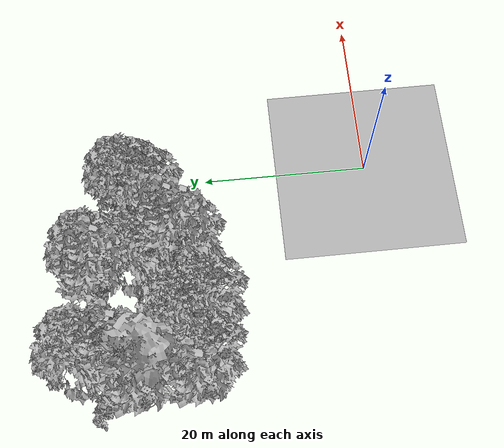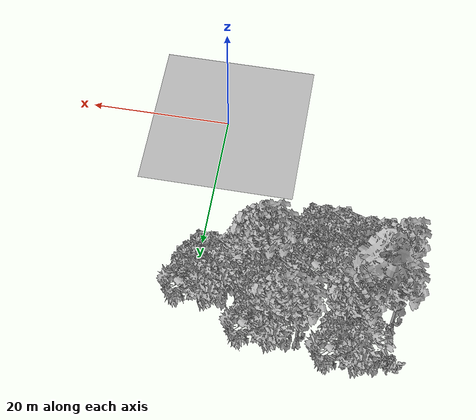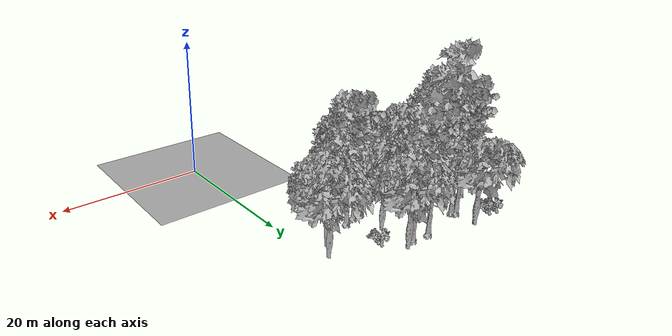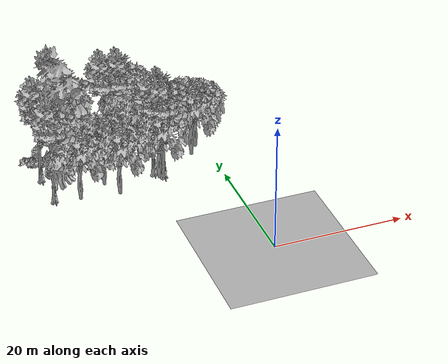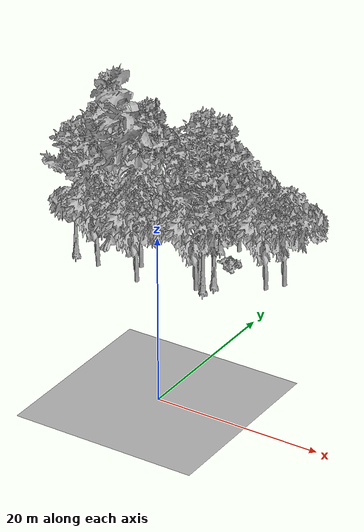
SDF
<sdf version="1.7">
 <world name="default">
  <model name="ground_plane">
   <static>1</static>
   <link name="link">
    <collision name="collision">
     <geometry><plane><normal>0 0 1</normal><size>100 100</size></plane></geometry>
     <surface><contact><ode><min_depth>0.01</min_depth><max_vel>0</max_vel></ode></contact></surface>
    </collision>
    <visual name="grass">
     <cast_shadows>0</cast_shadows>
     <geometry>
      <mesh>
       <scale>0.41000000000000003 0.41000000000000003 0.1</scale>
       <uri>file://grass_plane/meshes/grass_plane.dae</uri>
      </mesh>
     </geometry>
    </visual>
   </link>
  </model>
  <model name="Tree 53">
   <static>1</static>
   <pose>-23.803758097763165 27.53242939550931 0 1.57079 -0 0</pose>
   <link name="link">
    <collision name="collision">
     <geometry><mesh><scale>5 5 5</scale><uri>model://tree_4/meshes/tree_4.obj</uri></mesh></geometry>
    </collision>
    <visual name="visual">
     <geometry><mesh><scale>5 5 5</scale><uri>model://tree_4/meshes/tree_4.obj</uri></mesh></geometry>
    </visual>
   </link>
  </model>
  <model name="Tree 92">
   <static>1</static>
   <pose>-14.807454981048025 32.73547530737093 0 1.57079 -0 0</pose>
   <link name="link">
    <collision name="collision">
     <geometry><mesh><scale>5 5 5</scale><uri>model://tree_9/meshes/tree_9.obj</uri></mesh></geometry>
    </collision>
    <visual name="visual">
     <geometry><mesh><scale>5 5 5</scale><uri>model://tree_9/meshes/tree_9.obj</uri></mesh></geometry>
    </visual>
   </link>
  </model>
  <model name="Tree 132">
   <static>1</static>
   <pose>-8.780857883740538 22.985955963311554 0 1.57079 -0 0</pose>
   <link name="link">
    <collision name="collision">
     <geometry><mesh><scale>5 5 5</scale><uri>model://tree_9/meshes/tree_9.obj</uri></mesh></geometry>
    </collision>
    <visual name="visual">
     <geometry><mesh><scale>5 5 5</scale><uri>model://tree_9/meshes/tree_9.obj</uri></mesh></geometry>
    </visual>
   </link>
  </model>
  <model name="Tree 143">
   <static>1</static>
   <pose>-10.896337183410012 28.54299655543771 0 1.57079 -0 0</pose>
   <link name="link">
    <collision name="collision">
     <geometry><mesh><scale>5 5 5</scale><uri>model://tree_2/meshes/tree_2.obj</uri></mesh></geometry>
    </collision>
    <visual name="visual">
     <geometry><mesh><scale>5 5 5</scale><uri>model://tree_2/meshes/tree_2.obj</uri></mesh></geometry>
    </visual>
   </link>
  </model>
  <model name="Tree 147">
   <static>1</static>
   <pose>-18.112543908383063 23.943969143659288 0 1.57079 -0 0</pose>
   <link name="link">
    <collision name="collision">
     <geometry><mesh><scale>5 5 5</scale><uri>model://tree_2/meshes/tree_2.obj</uri></mesh></geometry>
    </collision>
    <visual name="visual">
     <geometry><mesh><scale>5 5 5</scale><uri>model://tree_2/meshes/tree_2.obj</uri></mesh></geometry>
    </visual>
   </link>
  </model>
  <model name="Tree 171">
   <static>1</static>
   <pose>-8.340116157289778 24.722578922635137 0 1.57079 -0 0</pose>
   <link name="link">
    <collision name="collision">
     <geometry><mesh><scale>5 5 5</scale><uri>model://tree_9/meshes/tree_9.obj</uri></mesh></geometry>
    </collision>
    <visual name="visual">
     <geometry><mesh><scale>5 5 5</scale><uri>model://tree_9/meshes/tree_9.obj</uri></mesh></geometry>
    </visual>
   </link>
  </model>
  <model name="Tree 177">
   <static>1</static>
   <pose>-1.5534932634758647 29.146359589009847 0 1.57079 -0 0</pose>
   <link name="link">
    <collision name="collision">
     <geometry><mesh><scale>5 5 5</scale><uri>model://tree_2/meshes/tree_2.obj</uri></mesh></geometry>
    </collision>
    <visual name="visual">
     <geometry><mesh><scale>5 5 5</scale><uri>model://tree_2/meshes/tree_2.obj</uri></mesh></geometry>
    </visual>
   </link>
  </model>
  <model name="Tree 216">
   <static>1</static>
   <pose>-16.652558628436523 20.780735772522505 0 1.57079 -0 0</pose>
   <link name="link">
    <collision name="collision">
     <geometry><mesh><scale>5 5 5</scale><uri>model://tree_2/meshes/tree_2.obj</uri></mesh></geometry>
    </collision>
    <visual name="visual">
     <geometry><mesh><scale>5 5 5</scale><uri>model://tree_2/meshes/tree_2.obj</uri></mesh></geometry>
    </visual>
   </link>
  </model>
  <model name="Tree 262">
   <static>1</static>
   <pose>-26.26877843736714 22.52972556819509 0 1.57079 -0 0</pose>
   <link name="link">
    <collision name="collision">
     <geometry><mesh><scale>5 5 5</scale><uri>model://tree_9/meshes/tree_9.obj</uri></mesh></geometry>
    </collision>
    <visual name="visual">
     <geometry><mesh><scale>5 5 5</scale><uri>model://tree_9/meshes/tree_9.obj</uri></mesh></geometry>
    </visual>
   </link>
  </model>
  <model name="Tree 333">
   <static>1</static>
   <pose>-9.994761039609699 24.234740286169554 0 1.57079 -0 0</pose>
   <link name="link">
    <collision name="collision">
     <geometry><mesh><scale>5 5 5</scale><uri>model://tree_9/meshes/tree_9.obj</uri></mesh></geometry>
    </collision>
    <visual name="visual">
     <geometry><mesh><scale>5 5 5</scale><uri>model://tree_9/meshes/tree_9.obj</uri></mesh></geometry>
    </visual>
   </link>
  </model>
  <model name="Tree 339">
   <static>1</static>
   <pose>-26.620576672530795 28.592853497974502 0 1.57079 -0 0</pose>
   <link name="link">
    <collision name="collision">
     <geometry><mesh><scale>5 5 5</scale><uri>model://tree_9/meshes/tree_9.obj</uri></mesh></geometry>
    </collision>
    <visual name="visual">
     <geometry><mesh><scale>5 5 5</scale><uri>model://tree_9/meshes/tree_9.obj</uri></mesh></geometry>
    </visual>
   </link>
  </model>
  <model name="Tree 344">
   <static>1</static>
   <pose>-10.38203551112732 33.412755009520396 0 1.57079 -0 0</pose>
   <link name="link">
    <collision name="collision">
     <geometry><mesh><scale>5 5 5</scale><uri>model://tree_2/meshes/tree_2.obj</uri></mesh></geometry>
    </collision>
    <visual name="visual">
     <geometry><mesh><scale>5 5 5</scale><uri>model://tree_2/meshes/tree_2.obj</uri></mesh></geometry>
    </visual>
   </link>
  </model>
  <model name="Tree 361">
   <static>1</static>
   <pose>-9.718052472346457 22.76295253184138 0 1.57079 -0 0</pose>
   <link name="link">
    <collision name="collision">
     <geometry><mesh><scale>5 5 5</scale><uri>model://tree_2/meshes/tree_2.obj</uri></mesh></geometry>
    </collision>
    <visual name="visual">
     <geometry><mesh><scale>5 5 5</scale><uri>model://tree_2/meshes/tree_2.obj</uri></mesh></geometry>
    </visual>
   </link>
  </model>
  <model name="Tree 367">
   <static>1</static>
   <pose>-21.460627902359743 31.037786431418937 0 1.57079 -0 0</pose>
   <link name="link">
    <collision name="collision">
     <geometry><mesh><scale>5 5 5</scale><uri>model://tree_9/meshes/tree_9.obj</uri></mesh></geometry>
    </collision>
    <visual name="visual">
     <geometry><mesh><scale>5 5 5</scale><uri>model://tree_9/meshes/tree_9.obj</uri></mesh></geometry>
    </visual>
   </link>
  </model>
  <model name="Tree 373">
   <static>1</static>
   <pose>-12.281225893651843 32.45876310305566 0 1.57079 -0 0</pose>
   <link name="link">
    <collision name="collision">
     <geometry><mesh><scale>5 5 5</scale><uri>model://tree_9/meshes/tree_9.obj</uri></mesh></geometry>
    </collision>
    <visual name="visual">
     <geometry><mesh><scale>5 5 5</scale><uri>model://tree_9/meshes/tree_9.obj</uri></mesh></geometry>
    </visual>
   </link>
  </model>
  <model name="Tree 442">
   <static>1</static>
   <pose>-2.917364934404276 27.20161537851176 0 1.57079 -0 0</pose>
   <link name="link">
    <collision name="collision">
     <geometry><mesh><scale>5 5 5</scale><uri>model://tree_2/meshes/tree_2.obj</uri></mesh></geometry>
    </collision>
    <visual name="visual">
     <geometry><mesh><scale>5 5 5</scale><uri>model://tree_2/meshes/tree_2.obj</uri></mesh></geometry>
    </visual>
   </link>
  </model>
  <model name="Tree 459">
   <static>1</static>
   <pose>-21.824847610218484 31.53596790006212 0 1.57079 -0 0</pose>
   <link name="link">
    <collision name="collision">
     <geometry><mesh><scale>5 5 5</scale><uri>model://tree_9/meshes/tree_9.obj</uri></mesh></geometry>
    </collision>
    <visual name="visual">
     <geometry><mesh><scale>5 5 5</scale><uri>model://tree_9/meshes/tree_9.obj</uri></mesh></geometry>
    </visual>
   </link>
  </model>
  <model name="Tree 467">
   <static>1</static>
   <pose>-22.587094849825387 21.46534352454077 0 1.57079 -0 0</pose>
   <link name="link">
    <collision name="collision">
     <geometry><mesh><scale>5 5 5</scale><uri>model://tree_2/meshes/tree_2.obj</uri></mesh></geometry>
    </collision>
    <visual name="visual">
     <geometry><mesh><scale>5 5 5</scale><uri>model://tree_2/meshes/tree_2.obj</uri></mesh></geometry>
    </visual>
   </link>
  </model>
  <model name="Tree 469">
   <static>1</static>
   <pose>-21.339753911252608 34.8383841562039 0 1.57079 -0 0</pose>
   <link name="link">
    <collision name="collision">
     <geometry><mesh><scale>5 5 5</scale><uri>model://tree_2/meshes/tree_2.obj</uri></mesh></geometry>
    </collision>
    <visual name="visual">
     <geometry><mesh><scale>5 5 5</scale><uri>model://tree_2/meshes/tree_2.obj</uri></mesh></geometry>
    </visual>
   </link>
  </model>
  <model name="Bush 70">
   <static>1</static>
   <pose>-9.260502883726303 29.668631904942487 0 1.57079 -0 0</pose>
   <link name="link">
    <collision name="collision">
     <geometry><mesh><scale>2 2 2</scale><uri>model://bush_2/meshes/bush_2.obj</uri></mesh></geometry>
    </collision>
    <visual name="visual">
     <geometry><mesh><scale>5 5 5</scale><uri>model://bush_2/meshes/bush_2.obj</uri></mesh></geometry>
    </visual>
   </link>
  </model>
  <model name="Bush 88">
   <static>1</static>
   <pose>-27.429166179201296 33.333222154410606 0 1.57079 -0 0</pose>
   <link name="link">
    <collision name="collision">
     <geometry><mesh><scale>2 2 2</scale><uri>model://bush_2/meshes/bush_2.obj</uri></mesh></geometry>
    </collision>
    <visual name="visual">
     <geometry><mesh><scale>5 5 5</scale><uri>model://bush_2/meshes/bush_2.obj</uri></mesh></geometry>
    </visual>
   </link>
  </model>
  <model name="Bush 100">
   <static>1</static>
   <pose>-26.20485276663893 33.055790187195115 0 1.57079 -0 0</pose>
   <link name="link">
    <collision name="collision">
     <geometry><mesh><scale>2 2 2</scale><uri>model://bush_2/meshes/bush_2.obj</uri></mesh></geometry>
    </collision>
    <visual name="visual">
     <geometry><mesh><scale>5 5 5</scale><uri>model://bush_2/meshes/bush_2.obj</uri></mesh></geometry>
    </visual>
   </link>
  </model>
 </world>
</sdf>
